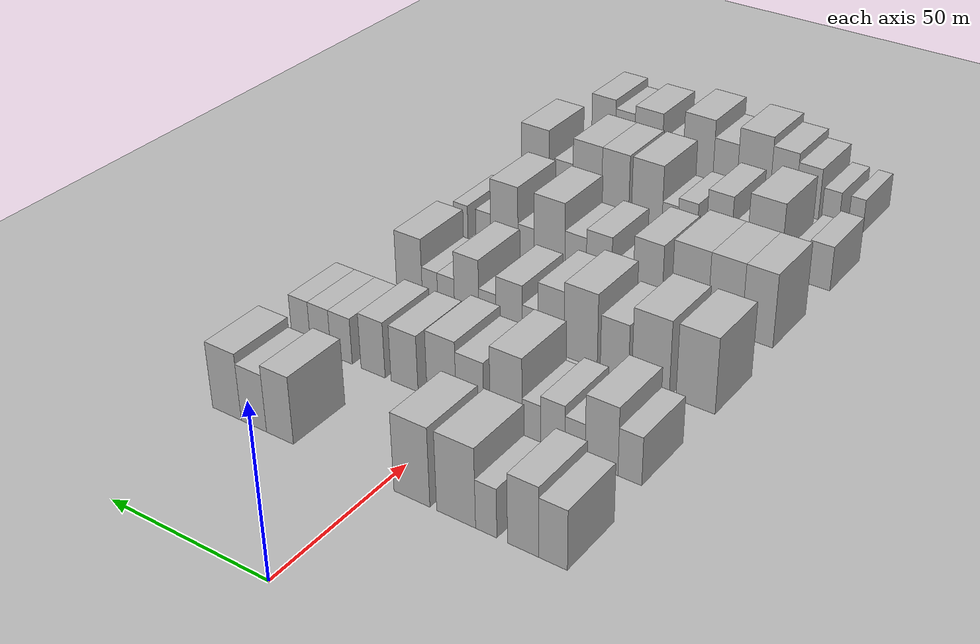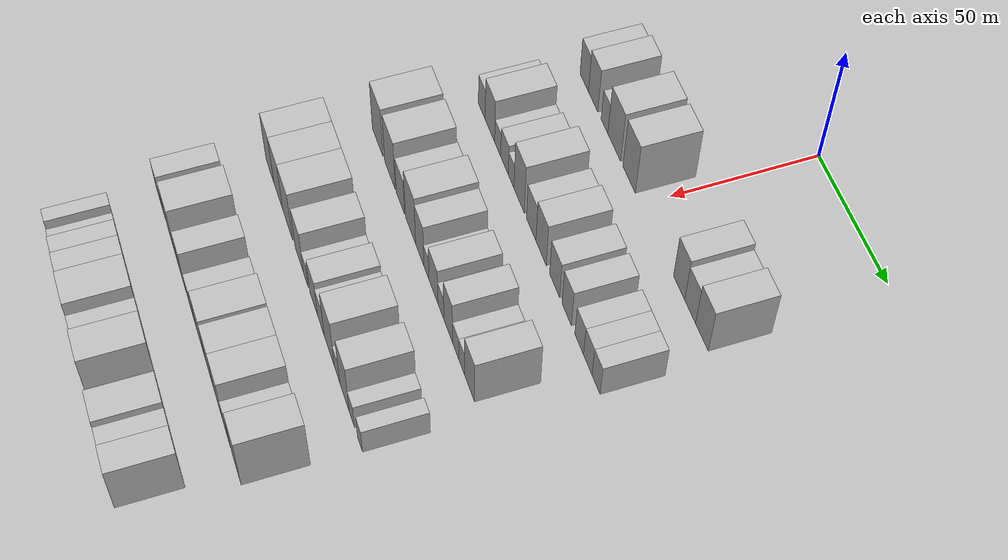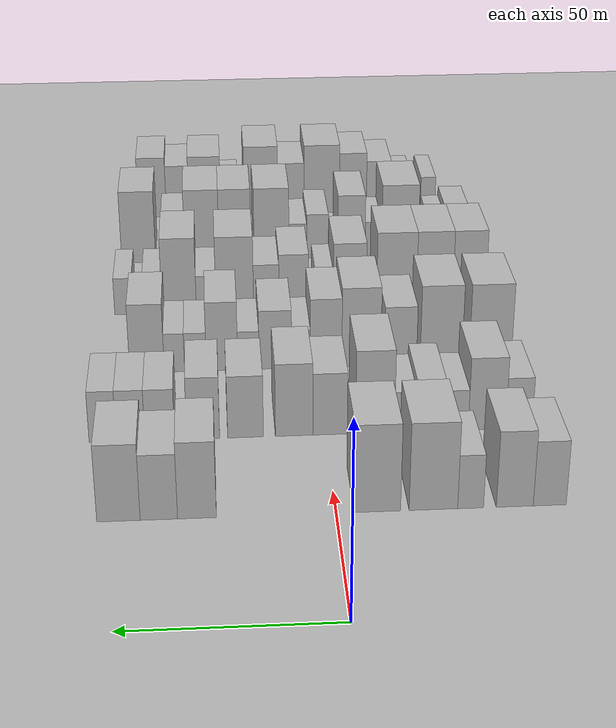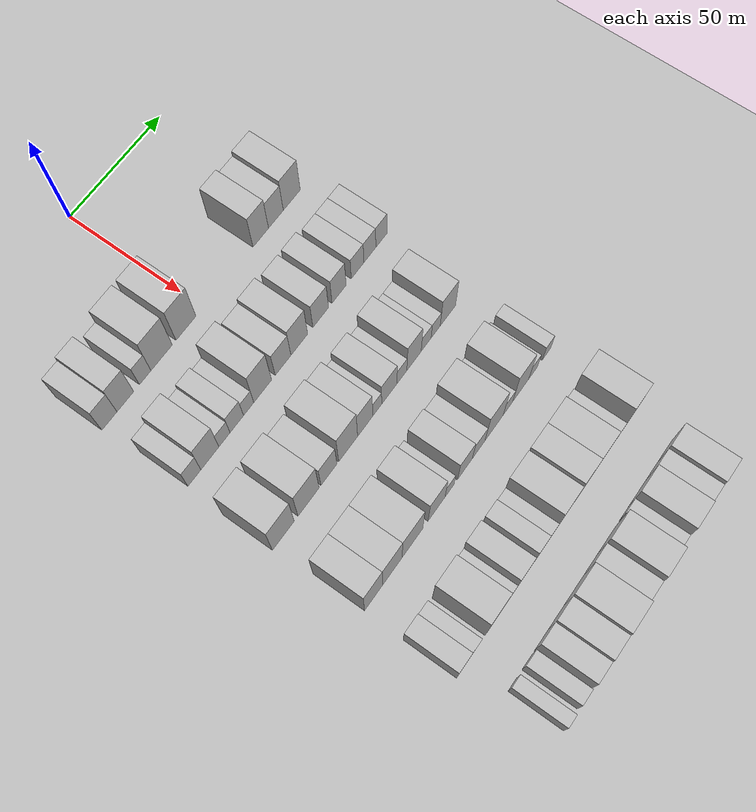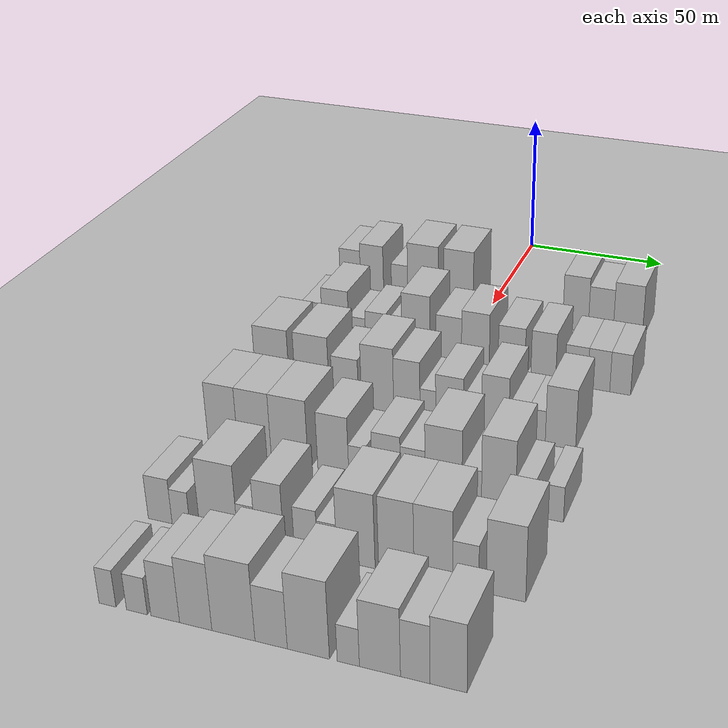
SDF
<sdf version="1.6">
 <world name="default">
  <include><name>ground_plane_1</name><uri>model://HANNAS_ground_plane</uri></include>
  <include>
   <name>ground_plane_2</name>
   <uri>model://HANNAS_ground_plane</uri>
   <pose>100 0 0  0 0 0</pose>
  </include>
  <model name="building_60">
   <static>1</static>
   <pose>50.0000 -50.0588 0 0.000000 0.000000 0.000000</pose>
   <link name="link">
    <pose>0 0 9.00 0 0 0</pose>
    <collision name="collision"><geometry><box><size>20.0000 7.7916 18.0000</size></box></geometry></collision>
    <visual name="visual">
     <cast_shadows>0</cast_shadows>
     <geometry><box><size>20.0000 7.7916 18.0000</size></box></geometry>
     <material>
      <script>
       <uri>model://HANNAS_wall/materials/scripts</uri>
       <uri>model://HANNAS_wall/materials/textures</uri>
       <name>vrc/HANNAS_wall</name>
      </script>
     </material>
    </visual>
   </link>
  </model>
  <model name="building_61">
   <static>1</static>
   <pose>50.0000 -41.8054 0 0.000000 0.000000 0.000000</pose>
   <link name="link">
    <pose>0 0 10.50 0 0 0</pose>
    <collision name="collision"><geometry><box><size>20.0000 8.7152 21.0000</size></box></geometry></collision>
    <visual name="visual">
     <cast_shadows>0</cast_shadows>
     <geometry><box><size>20.0000 8.7152 21.0000</size></box></geometry>
     <material>
      <script>
       <uri>model://HANNAS_wall/materials/scripts</uri>
       <uri>model://HANNAS_wall/materials/textures</uri>
       <name>vrc/HANNAS_wall</name>
      </script>
     </material>
    </visual>
   </link>
  </model>
  <model name="building_62">
   <static>1</static>
   <pose>50.0000 -31.4027 0 0.000000 0.000000 0.000000</pose>
   <link name="link">
    <pose>0 0 7.50 0 0 0</pose>
    <collision name="collision"><geometry><box><size>20.0000 6.0904 15.0000</size></box></geometry></collision>
    <visual name="visual">
     <cast_shadows>0</cast_shadows>
     <geometry><box><size>20.0000 6.0904 15.0000</size></box></geometry>
     <material>
      <script>
       <uri>model://HANNAS_wall/materials/scripts</uri>
       <uri>model://HANNAS_wall/materials/textures</uri>
       <name>vrc/HANNAS_wall</name>
      </script>
     </material>
    </visual>
   </link>
  </model>
  <model name="building_63">
   <static>1</static>
   <pose>50.0000 -22.6697 0 0.000000 0.000000 0.000000</pose>
   <link name="link">
    <pose>0 0 12.00 0 0 0</pose>
    <collision name="collision"><geometry><box><size>20.0000 11.3756 24.0000</size></box></geometry></collision>
    <visual name="visual">
     <cast_shadows>0</cast_shadows>
     <geometry><box><size>20.0000 11.3756 24.0000</size></box></geometry>
     <material>
      <script>
       <uri>model://HANNAS_wall/materials/scripts</uri>
       <uri>model://HANNAS_wall/materials/textures</uri>
       <name>vrc/HANNAS_wall</name>
      </script>
     </material>
    </visual>
   </link>
  </model>
  <model name="building_64">
   <static>1</static>
   <pose>50.0000 -9.5587 0 0.000000 0.000000 0.000000</pose>
   <link name="link">
    <pose>0 0 12.00 0 0 0</pose>
    <collision name="collision"><geometry><box><size>20.0000 10.8463 24.0000</size></box></geometry></collision>
    <visual name="visual">
     <cast_shadows>0</cast_shadows>
     <geometry><box><size>20.0000 10.8463 24.0000</size></box></geometry>
     <material>
      <script>
       <uri>model://HANNAS_wall/materials/scripts</uri>
       <uri>model://HANNAS_wall/materials/textures</uri>
       <name>vrc/HANNAS_wall</name>
      </script>
     </material>
    </visual>
   </link>
  </model>
  <model name="building_65">
   <static>1</static>
   <pose>50.0000 32.2987 0 0.000000 0.000000 0.000000</pose>
   <link name="link">
    <pose>0 0 10.50 0 0 0</pose>
    <collision name="collision"><geometry><box><size>20.0000 8.9562 21.0000</size></box></geometry></collision>
    <visual name="visual">
     <cast_shadows>0</cast_shadows>
     <geometry><box><size>20.0000 8.9562 21.0000</size></box></geometry>
     <material>
      <script>
       <uri>model://HANNAS_wall/materials/scripts</uri>
       <uri>model://HANNAS_wall/materials/textures</uri>
       <name>vrc/HANNAS_wall</name>
      </script>
     </material>
    </visual>
   </link>
  </model>
  <model name="building_66">
   <static>1</static>
   <pose>50.0000 41.0747 0 0.000000 0.000000 0.000000</pose>
   <link name="link">
    <pose>0 0 9.00 0 0 0</pose>
    <collision name="collision"><geometry><box><size>20.0000 8.5957 18.0000</size></box></geometry></collision>
    <visual name="visual">
     <cast_shadows>0</cast_shadows>
     <geometry><box><size>20.0000 8.5957 18.0000</size></box></geometry>
     <material>
      <script>
       <uri>model://HANNAS_wall/materials/scripts</uri>
       <uri>model://HANNAS_wall/materials/textures</uri>
       <name>vrc/HANNAS_wall</name>
      </script>
     </material>
    </visual>
   </link>
  </model>
  <model name="building_67">
   <static>1</static>
   <pose>50.0000 50.3520 0 0.000000 0.000000 0.000000</pose>
   <link name="link">
    <pose>0 0 10.50 0 0 0</pose>
    <collision name="collision"><geometry><box><size>20.0000 9.9589 21.0000</size></box></geometry></collision>
    <visual name="visual">
     <cast_shadows>0</cast_shadows>
     <geometry><box><size>20.0000 9.9589 21.0000</size></box></geometry>
     <material>
      <script>
       <uri>model://HANNAS_wall/materials/scripts</uri>
       <uri>model://HANNAS_wall/materials/textures</uri>
       <name>vrc/HANNAS_wall</name>
      </script>
     </material>
    </visual>
   </link>
  </model>
  <model name="building_184">
   <static>1</static>
   <pose>85.0000 -49.0860 0 0.000000 0.000000 0.000000</pose>
   <link name="link">
    <pose>0 0 7.50 0 0 0</pose>
    <collision name="collision"><geometry><box><size>20.0000 6.7820 15.0000</size></box></geometry></collision>
    <visual name="visual">
     <cast_shadows>0</cast_shadows>
     <geometry><box><size>20.0000 6.7820 15.0000</size></box></geometry>
     <material>
      <script>
       <uri>model://HANNAS_wall/materials/scripts</uri>
       <uri>model://HANNAS_wall/materials/textures</uri>
       <name>vrc/HANNAS_wall</name>
      </script>
     </material>
    </visual>
   </link>
  </model>
  <model name="building_185">
   <static>1</static>
   <pose>85.0000 -40.9374 0 0.000000 0.000000 0.000000</pose>
   <link name="link">
    <pose>0 0 10.50 0 0 0</pose>
    <collision name="collision"><geometry><box><size>20.0000 9.5151 21.0000</size></box></geometry></collision>
    <visual name="visual">
     <cast_shadows>0</cast_shadows>
     <geometry><box><size>20.0000 9.5151 21.0000</size></box></geometry>
     <material>
      <script>
       <uri>model://HANNAS_wall/materials/scripts</uri>
       <uri>model://HANNAS_wall/materials/textures</uri>
       <name>vrc/HANNAS_wall</name>
      </script>
     </material>
    </visual>
   </link>
  </model>
  <model name="building_186">
   <static>1</static>
   <pose>85.0000 -33.2122 0 0.000000 0.000000 0.000000</pose>
   <link name="link">
    <pose>0 0 6.00 0 0 0</pose>
    <collision name="collision"><geometry><box><size>20.0000 5.9353 12.0000</size></box></geometry></collision>
    <visual name="visual">
     <cast_shadows>0</cast_shadows>
     <geometry><box><size>20.0000 5.9353 12.0000</size></box></geometry>
     <material>
      <script>
       <uri>model://HANNAS_wall/materials/scripts</uri>
       <uri>model://HANNAS_wall/materials/textures</uri>
       <name>vrc/HANNAS_wall</name>
      </script>
     </material>
    </visual>
   </link>
  </model>
  <model name="building_187">
   <static>1</static>
   <pose>85.0000 -26.6049 0 0.000000 0.000000 0.000000</pose>
   <link name="link">
    <pose>0 0 7.50 0 0 0</pose>
    <collision name="collision"><geometry><box><size>20.0000 7.2794 15.0000</size></box></geometry></collision>
    <visual name="visual">
     <cast_shadows>0</cast_shadows>
     <geometry><box><size>20.0000 7.2794 15.0000</size></box></geometry>
     <material>
      <script>
       <uri>model://HANNAS_wall/materials/scripts</uri>
       <uri>model://HANNAS_wall/materials/textures</uri>
       <name>vrc/HANNAS_wall</name>
      </script>
     </material>
    </visual>
   </link>
  </model>
  <model name="building_188">
   <static>1</static>
   <pose>85.0000 -20.1975 0 0.000000 0.000000 0.000000</pose>
   <link name="link">
    <pose>0 0 6.00 0 0 0</pose>
    <collision name="collision"><geometry><box><size>20.0000 5.5354 12.0000</size></box></geometry></collision>
    <visual name="visual">
     <cast_shadows>0</cast_shadows>
     <geometry><box><size>20.0000 5.5354 12.0000</size></box></geometry>
     <material>
      <script>
       <uri>model://HANNAS_wall/materials/scripts</uri>
       <uri>model://HANNAS_wall/materials/textures</uri>
       <name>vrc/HANNAS_wall</name>
      </script>
     </material>
    </visual>
   </link>
  </model>
  <model name="building_189">
   <static>1</static>
   <pose>85.0000 -12.5226 0 0.000000 0.000000 0.000000</pose>
   <link name="link">
    <pose>0 0 12.00 0 0 0</pose>
    <collision name="collision"><geometry><box><size>20.0000 9.8143 24.0000</size></box></geometry></collision>
    <visual name="visual">
     <cast_shadows>0</cast_shadows>
     <geometry><box><size>20.0000 9.8143 24.0000</size></box></geometry>
     <material>
      <script>
       <uri>model://HANNAS_wall/materials/scripts</uri>
       <uri>model://HANNAS_wall/materials/textures</uri>
       <name>vrc/HANNAS_wall</name>
      </script>
     </material>
    </visual>
   </link>
  </model>
  <model name="building_190">
   <static>1</static>
   <pose>85.0000 -1.2175 0 0.000000 0.000000 0.000000</pose>
   <link name="link">
    <pose>0 0 9.00 0 0 0</pose>
    <collision name="collision"><geometry><box><size>20.0000 8.7960 18.0000</size></box></geometry></collision>
    <visual name="visual">
     <cast_shadows>0</cast_shadows>
     <geometry><box><size>20.0000 8.7960 18.0000</size></box></geometry>
     <material>
      <script>
       <uri>model://HANNAS_wall/materials/scripts</uri>
       <uri>model://HANNAS_wall/materials/textures</uri>
       <name>vrc/HANNAS_wall</name>
      </script>
     </material>
    </visual>
   </link>
  </model>
  <model name="building_191">
   <static>1</static>
   <pose>85.0000 7.8904 0 0.000000 0.000000 0.000000</pose>
   <link name="link">
    <pose>0 0 10.50 0 0 0</pose>
    <collision name="collision"><geometry><box><size>20.0000 9.4198 21.0000</size></box></geometry></collision>
    <visual name="visual">
     <cast_shadows>0</cast_shadows>
     <geometry><box><size>20.0000 9.4198 21.0000</size></box></geometry>
     <material>
      <script>
       <uri>model://HANNAS_wall/materials/scripts</uri>
       <uri>model://HANNAS_wall/materials/textures</uri>
       <name>vrc/HANNAS_wall</name>
      </script>
     </material>
    </visual>
   </link>
  </model>
  <model name="building_192">
   <static>1</static>
   <pose>85.0000 20.0888 0 0.000000 0.000000 0.000000</pose>
   <link name="link">
    <pose>0 0 9.00 0 0 0</pose>
    <collision name="collision"><geometry><box><size>20.0000 8.9771 18.0000</size></box></geometry></collision>
    <visual name="visual">
     <cast_shadows>0</cast_shadows>
     <geometry><box><size>20.0000 8.9771 18.0000</size></box></geometry>
     <material>
      <script>
       <uri>model://HANNAS_wall/materials/scripts</uri>
       <uri>model://HANNAS_wall/materials/textures</uri>
       <name>vrc/HANNAS_wall</name>
      </script>
     </material>
    </visual>
   </link>
  </model>
  <model name="building_193">
   <static>1</static>
   <pose>85.0000 30.6857 0 0.000000 0.000000 0.000000</pose>
   <link name="link">
    <pose>0 0 9.00 0 0 0</pose>
    <collision name="collision"><geometry><box><size>20.0000 8.2168 18.0000</size></box></geometry></collision>
    <visual name="visual">
     <cast_shadows>0</cast_shadows>
     <geometry><box><size>20.0000 8.2168 18.0000</size></box></geometry>
     <material>
      <script>
       <uri>model://HANNAS_wall/materials/scripts</uri>
       <uri>model://HANNAS_wall/materials/textures</uri>
       <name>vrc/HANNAS_wall</name>
      </script>
     </material>
    </visual>
   </link>
  </model>
  <model name="building_194">
   <static>1</static>
   <pose>85.0000 41.5175 0 0.000000 0.000000 0.000000</pose>
   <link name="link">
    <pose>0 0 7.50 0 0 0</pose>
    <collision name="collision"><geometry><box><size>20.0000 7.4469 15.0000</size></box></geometry></collision>
    <visual name="visual">
     <cast_shadows>0</cast_shadows>
     <geometry><box><size>20.0000 7.4469 15.0000</size></box></geometry>
     <material>
      <script>
       <uri>model://HANNAS_wall/materials/scripts</uri>
       <uri>model://HANNAS_wall/materials/textures</uri>
       <name>vrc/HANNAS_wall</name>
      </script>
     </material>
    </visual>
   </link>
  </model>
  <model name="building_195">
   <static>1</static>
   <pose>85.0000 48.8222 0 0.000000 0.000000 0.000000</pose>
   <link name="link">
    <pose>0 0 7.50 0 0 0</pose>
    <collision name="collision"><geometry><box><size>20.0000 7.1625 15.0000</size></box></geometry></collision>
    <visual name="visual">
     <cast_shadows>0</cast_shadows>
     <geometry><box><size>20.0000 7.1625 15.0000</size></box></geometry>
     <material>
      <script>
       <uri>model://HANNAS_wall/materials/scripts</uri>
       <uri>model://HANNAS_wall/materials/textures</uri>
       <name>vrc/HANNAS_wall</name>
      </script>
     </material>
    </visual>
   </link>
  </model>
  <model name="building_196">
   <static>1</static>
   <pose>85.0000 55.7459 0 0.000000 0.000000 0.000000</pose>
   <link name="link">
    <pose>0 0 7.50 0 0 0</pose>
    <collision name="collision"><geometry><box><size>20.0000 6.6847 15.0000</size></box></geometry></collision>
    <visual name="visual">
     <cast_shadows>0</cast_shadows>
     <geometry><box><size>20.0000 6.6847 15.0000</size></box></geometry>
     <material>
      <script>
       <uri>model://HANNAS_wall/materials/scripts</uri>
       <uri>model://HANNAS_wall/materials/textures</uri>
       <name>vrc/HANNAS_wall</name>
      </script>
     </material>
    </visual>
   </link>
  </model>
  <model name="building_310">
   <static>1</static>
   <pose>120.0000 -47.5419 0 0.000000 0.000000 0.000000</pose>
   <link name="link">
    <pose>0 0 12.00 0 0 0</pose>
    <collision name="collision"><geometry><box><size>20.0000 11.5861 24.0000</size></box></geometry></collision>
    <visual name="visual">
     <cast_shadows>0</cast_shadows>
     <geometry><box><size>20.0000 11.5861 24.0000</size></box></geometry>
     <material>
      <script>
       <uri>model://HANNAS_wall/materials/scripts</uri>
       <uri>model://HANNAS_wall/materials/textures</uri>
       <name>vrc/HANNAS_wall</name>
      </script>
     </material>
    </visual>
   </link>
  </model>
  <model name="building_311">
   <static>1</static>
   <pose>120.0000 -34.0307 0 0.000000 0.000000 0.000000</pose>
   <link name="link">
    <pose>0 0 12.00 0 0 0</pose>
    <collision name="collision"><geometry><box><size>20.0000 11.4361 24.0000</size></box></geometry></collision>
    <visual name="visual">
     <cast_shadows>0</cast_shadows>
     <geometry><box><size>20.0000 11.4361 24.0000</size></box></geometry>
     <material>
      <script>
       <uri>model://HANNAS_wall/materials/scripts</uri>
       <uri>model://HANNAS_wall/materials/textures</uri>
       <name>vrc/HANNAS_wall</name>
      </script>
     </material>
    </visual>
   </link>
  </model>
  <model name="building_312">
   <static>1</static>
   <pose>120.0000 -22.9382 0 0.000000 0.000000 0.000000</pose>
   <link name="link">
    <pose>0 0 9.00 0 0 0</pose>
    <collision name="collision"><geometry><box><size>20.0000 8.7489 18.0000</size></box></geometry></collision>
    <visual name="visual">
     <cast_shadows>0</cast_shadows>
     <geometry><box><size>20.0000 8.7489 18.0000</size></box></geometry>
     <material>
      <script>
       <uri>model://HANNAS_wall/materials/scripts</uri>
       <uri>model://HANNAS_wall/materials/textures</uri>
       <name>vrc/HANNAS_wall</name>
      </script>
     </material>
    </visual>
   </link>
  </model>
  <model name="building_313">
   <static>1</static>
   <pose>120.0000 -12.2815 0 0.000000 0.000000 0.000000</pose>
   <link name="link">
    <pose>0 0 12.00 0 0 0</pose>
    <collision name="collision"><geometry><box><size>20.0000 10.5646 24.0000</size></box></geometry></collision>
    <visual name="visual">
     <cast_shadows>0</cast_shadows>
     <geometry><box><size>20.0000 10.5646 24.0000</size></box></geometry>
     <material>
      <script>
       <uri>model://HANNAS_wall/materials/scripts</uri>
       <uri>model://HANNAS_wall/materials/textures</uri>
       <name>vrc/HANNAS_wall</name>
      </script>
     </material>
    </visual>
   </link>
  </model>
  <model name="building_314">
   <static>1</static>
   <pose>120.0000 -2.7231 0 0.000000 0.000000 0.000000</pose>
   <link name="link">
    <pose>0 0 10.50 0 0 0</pose>
    <collision name="collision"><geometry><box><size>20.0000 8.5522 21.0000</size></box></geometry></collision>
    <visual name="visual">
     <cast_shadows>0</cast_shadows>
     <geometry><box><size>20.0000 8.5522 21.0000</size></box></geometry>
     <material>
      <script>
       <uri>model://HANNAS_wall/materials/scripts</uri>
       <uri>model://HANNAS_wall/materials/textures</uri>
       <name>vrc/HANNAS_wall</name>
      </script>
     </material>
    </visual>
   </link>
  </model>
  <model name="building_315">
   <static>1</static>
   <pose>120.0000 4.0740 0 0.000000 0.000000 0.000000</pose>
   <link name="link">
    <pose>0 0 6.00 0 0 0</pose>
    <collision name="collision"><geometry><box><size>20.0000 5.0420 12.0000</size></box></geometry></collision>
    <visual name="visual">
     <cast_shadows>0</cast_shadows>
     <geometry><box><size>20.0000 5.0420 12.0000</size></box></geometry>
     <material>
      <script>
       <uri>model://HANNAS_wall/materials/scripts</uri>
       <uri>model://HANNAS_wall/materials/textures</uri>
       <name>vrc/HANNAS_wall</name>
      </script>
     </material>
    </visual>
   </link>
  </model>
  <model name="building_316">
   <static>1</static>
   <pose>120.0000 11.0069 0 0.000000 0.000000 0.000000</pose>
   <link name="link">
    <pose>0 0 9.00 0 0 0</pose>
    <collision name="collision"><geometry><box><size>20.0000 8.8238 18.0000</size></box></geometry></collision>
    <visual name="visual">
     <cast_shadows>0</cast_shadows>
     <geometry><box><size>20.0000 8.8238 18.0000</size></box></geometry>
     <material>
      <script>
       <uri>model://HANNAS_wall/materials/scripts</uri>
       <uri>model://HANNAS_wall/materials/textures</uri>
       <name>vrc/HANNAS_wall</name>
      </script>
     </material>
    </visual>
   </link>
  </model>
  <model name="building_317">
   <static>1</static>
   <pose>120.0000 18.2955 0 0.000000 0.000000 0.000000</pose>
   <link name="link">
    <pose>0 0 6.00 0 0 0</pose>
    <collision name="collision"><geometry><box><size>20.0000 5.7532 12.0000</size></box></geometry></collision>
    <visual name="visual">
     <cast_shadows>0</cast_shadows>
     <geometry><box><size>20.0000 5.7532 12.0000</size></box></geometry>
     <material>
      <script>
       <uri>model://HANNAS_wall/materials/scripts</uri>
       <uri>model://HANNAS_wall/materials/textures</uri>
       <name>vrc/HANNAS_wall</name>
      </script>
     </material>
    </visual>
   </link>
  </model>
  <model name="building_318">
   <static>1</static>
   <pose>120.0000 25.4135 0 0.000000 0.000000 0.000000</pose>
   <link name="link">
    <pose>0 0 10.50 0 0 0</pose>
    <collision name="collision"><geometry><box><size>20.0000 8.4828 21.0000</size></box></geometry></collision>
    <visual name="visual">
     <cast_shadows>0</cast_shadows>
     <geometry><box><size>20.0000 8.4828 21.0000</size></box></geometry>
     <material>
      <script>
       <uri>model://HANNAS_wall/materials/scripts</uri>
       <uri>model://HANNAS_wall/materials/textures</uri>
       <name>vrc/HANNAS_wall</name>
      </script>
     </material>
    </visual>
   </link>
  </model>
  <model name="building_319">
   <static>1</static>
   <pose>120.0000 32.5932 0 0.000000 0.000000 0.000000</pose>
   <link name="link">
    <pose>0 0 6.00 0 0 0</pose>
    <collision name="collision"><geometry><box><size>20.0000 5.8766 12.0000</size></box></geometry></collision>
    <visual name="visual">
     <cast_shadows>0</cast_shadows>
     <geometry><box><size>20.0000 5.8766 12.0000</size></box></geometry>
     <material>
      <script>
       <uri>model://HANNAS_wall/materials/scripts</uri>
       <uri>model://HANNAS_wall/materials/textures</uri>
       <name>vrc/HANNAS_wall</name>
      </script>
     </material>
    </visual>
   </link>
  </model>
  <model name="building_320">
   <static>1</static>
   <pose>120.0000 38.2560 0 0.000000 0.000000 0.000000</pose>
   <link name="link">
    <pose>0 0 6.00 0 0 0</pose>
    <collision name="collision"><geometry><box><size>20.0000 5.4492 12.0000</size></box></geometry></collision>
    <visual name="visual">
     <cast_shadows>0</cast_shadows>
     <geometry><box><size>20.0000 5.4492 12.0000</size></box></geometry>
     <material>
      <script>
       <uri>model://HANNAS_wall/materials/scripts</uri>
       <uri>model://HANNAS_wall/materials/textures</uri>
       <name>vrc/HANNAS_wall</name>
      </script>
     </material>
    </visual>
   </link>
  </model>
  <model name="building_321">
   <static>1</static>
   <pose>120.0000 45.6116 0 0.000000 0.000000 0.000000</pose>
   <link name="link">
    <pose>0 0 10.50 0 0 0</pose>
    <collision name="collision"><geometry><box><size>20.0000 9.2619 21.0000</size></box></geometry></collision>
    <visual name="visual">
     <cast_shadows>0</cast_shadows>
     <geometry><box><size>20.0000 9.2619 21.0000</size></box></geometry>
     <material>
      <script>
       <uri>model://HANNAS_wall/materials/scripts</uri>
       <uri>model://HANNAS_wall/materials/textures</uri>
       <name>vrc/HANNAS_wall</name>
      </script>
     </material>
    </visual>
   </link>
  </model>
  <model name="building_433">
   <static>1</static>
   <pose>155.0000 -47.0612 0 0.000000 0.000000 0.000000</pose>
   <link name="link">
    <pose>0 0 12.00 0 0 0</pose>
    <collision name="collision"><geometry><box><size>20.0000 9.6658 24.0000</size></box></geometry></collision>
    <visual name="visual">
     <cast_shadows>0</cast_shadows>
     <geometry><box><size>20.0000 9.6658 24.0000</size></box></geometry>
     <material>
      <script>
       <uri>model://HANNAS_wall/materials/scripts</uri>
       <uri>model://HANNAS_wall/materials/textures</uri>
       <name>vrc/HANNAS_wall</name>
      </script>
     </material>
    </visual>
   </link>
  </model>
  <model name="building_434">
   <static>1</static>
   <pose>155.0000 -36.9147 0 0.000000 0.000000 0.000000</pose>
   <link name="link">
    <pose>0 0 12.00 0 0 0</pose>
    <collision name="collision"><geometry><box><size>20.0000 10.6271 24.0000</size></box></geometry></collision>
    <visual name="visual">
     <cast_shadows>0</cast_shadows>
     <geometry><box><size>20.0000 10.6271 24.0000</size></box></geometry>
     <material>
      <script>
       <uri>model://HANNAS_wall/materials/scripts</uri>
       <uri>model://HANNAS_wall/materials/textures</uri>
       <name>vrc/HANNAS_wall</name>
      </script>
     </material>
    </visual>
   </link>
  </model>
  <model name="building_435">
   <static>1</static>
   <pose>155.0000 -25.7898 0 0.000000 0.000000 0.000000</pose>
   <link name="link">
    <pose>0 0 12.00 0 0 0</pose>
    <collision name="collision"><geometry><box><size>20.0000 11.6227 24.0000</size></box></geometry></collision>
    <visual name="visual">
     <cast_shadows>0</cast_shadows>
     <geometry><box><size>20.0000 11.6227 24.0000</size></box></geometry>
     <material>
      <script>
       <uri>model://HANNAS_wall/materials/scripts</uri>
       <uri>model://HANNAS_wall/materials/textures</uri>
       <name>vrc/HANNAS_wall</name>
      </script>
     </material>
    </visual>
   </link>
  </model>
  <model name="building_436">
   <static>1</static>
   <pose>155.0000 -12.1797 0 0.000000 0.000000 0.000000</pose>
   <link name="link">
    <pose>0 0 10.50 0 0 0</pose>
    <collision name="collision"><geometry><box><size>20.0000 9.5976 21.0000</size></box></geometry></collision>
    <visual name="visual">
     <cast_shadows>0</cast_shadows>
     <geometry><box><size>20.0000 9.5976 21.0000</size></box></geometry>
     <material>
      <script>
       <uri>model://HANNAS_wall/materials/scripts</uri>
       <uri>model://HANNAS_wall/materials/textures</uri>
       <name>vrc/HANNAS_wall</name>
      </script>
     </material>
    </visual>
   </link>
  </model>
  <model name="building_437">
   <static>1</static>
   <pose>155.0000 -4.7977 0 0.000000 0.000000 0.000000</pose>
   <link name="link">
    <pose>0 0 6.00 0 0 0</pose>
    <collision name="collision"><geometry><box><size>20.0000 5.1664 12.0000</size></box></geometry></collision>
    <visual name="visual">
     <cast_shadows>0</cast_shadows>
     <geometry><box><size>20.0000 5.1664 12.0000</size></box></geometry>
     <material>
      <script>
       <uri>model://HANNAS_wall/materials/scripts</uri>
       <uri>model://HANNAS_wall/materials/textures</uri>
       <name>vrc/HANNAS_wall</name>
      </script>
     </material>
    </visual>
   </link>
  </model>
  <model name="building_438">
   <static>1</static>
   <pose>155.0000 4.0860 0 0.000000 0.000000 0.000000</pose>
   <link name="link">
    <pose>0 0 9.00 0 0 0</pose>
    <collision name="collision"><geometry><box><size>20.0000 8.6009 18.0000</size></box></geometry></collision>
    <visual name="visual">
     <cast_shadows>0</cast_shadows>
     <geometry><box><size>20.0000 8.6009 18.0000</size></box></geometry>
     <material>
      <script>
       <uri>model://HANNAS_wall/materials/scripts</uri>
       <uri>model://HANNAS_wall/materials/textures</uri>
       <name>vrc/HANNAS_wall</name>
      </script>
     </material>
    </visual>
   </link>
  </model>
  <model name="building_439">
   <static>1</static>
   <pose>155.0000 12.0719 0 0.000000 0.000000 0.000000</pose>
   <link name="link">
    <pose>0 0 7.50 0 0 0</pose>
    <collision name="collision"><geometry><box><size>20.0000 7.3711 15.0000</size></box></geometry></collision>
    <visual name="visual">
     <cast_shadows>0</cast_shadows>
     <geometry><box><size>20.0000 7.3711 15.0000</size></box></geometry>
     <material>
      <script>
       <uri>model://HANNAS_wall/materials/scripts</uri>
       <uri>model://HANNAS_wall/materials/textures</uri>
       <name>vrc/HANNAS_wall</name>
      </script>
     </material>
    </visual>
   </link>
  </model>
  <model name="building_440">
   <static>1</static>
   <pose>155.0000 21.1952 0 0.000000 0.000000 0.000000</pose>
   <link name="link">
    <pose>0 0 12.00 0 0 0</pose>
    <collision name="collision"><geometry><box><size>20.0000 10.8754 24.0000</size></box></geometry></collision>
    <visual name="visual">
     <cast_shadows>0</cast_shadows>
     <geometry><box><size>20.0000 10.8754 24.0000</size></box></geometry>
     <material>
      <script>
       <uri>model://HANNAS_wall/materials/scripts</uri>
       <uri>model://HANNAS_wall/materials/textures</uri>
       <name>vrc/HANNAS_wall</name>
      </script>
     </material>
    </visual>
   </link>
  </model>
  <model name="building_441">
   <static>1</static>
   <pose>155.0000 29.4606 0 0.000000 0.000000 0.000000</pose>
   <link name="link">
    <pose>0 0 6.00 0 0 0</pose>
    <collision name="collision"><geometry><box><size>20.0000 5.6555 12.0000</size></box></geometry></collision>
    <visual name="visual">
     <cast_shadows>0</cast_shadows>
     <geometry><box><size>20.0000 5.6555 12.0000</size></box></geometry>
     <material>
      <script>
       <uri>model://HANNAS_wall/materials/scripts</uri>
       <uri>model://HANNAS_wall/materials/textures</uri>
       <name>vrc/HANNAS_wall</name>
      </script>
     </material>
    </visual>
   </link>
  </model>
  <model name="building_442">
   <static>1</static>
   <pose>155.0000 37.2238 0 0.000000 0.000000 0.000000</pose>
   <link name="link">
    <pose>0 0 12.00 0 0 0</pose>
    <collision name="collision"><geometry><box><size>20.0000 9.8709 24.0000</size></box></geometry></collision>
    <visual name="visual">
     <cast_shadows>0</cast_shadows>
     <geometry><box><size>20.0000 9.8709 24.0000</size></box></geometry>
     <material>
      <script>
       <uri>model://HANNAS_wall/materials/scripts</uri>
       <uri>model://HANNAS_wall/materials/textures</uri>
       <name>vrc/HANNAS_wall</name>
      </script>
     </material>
    </visual>
   </link>
  </model>
  <model name="building_443">
   <static>1</static>
   <pose>155.0000 44.8950 0 0.000000 0.000000 0.000000</pose>
   <link name="link">
    <pose>0 0 6.00 0 0 0</pose>
    <collision name="collision"><geometry><box><size>20.0000 5.4714 12.0000</size></box></geometry></collision>
    <visual name="visual">
     <cast_shadows>0</cast_shadows>
     <geometry><box><size>20.0000 5.4714 12.0000</size></box></geometry>
     <material>
      <script>
       <uri>model://HANNAS_wall/materials/scripts</uri>
       <uri>model://HANNAS_wall/materials/textures</uri>
       <name>vrc/HANNAS_wall</name>
      </script>
     </material>
    </visual>
   </link>
  </model>
  <model name="building_444">
   <static>1</static>
   <pose>155.0000 53.2041 0 0.000000 0.000000 0.000000</pose>
   <link name="link">
    <pose>0 0 6.00 0 0 0</pose>
    <collision name="collision"><geometry><box><size>20.0000 5.1469 12.0000</size></box></geometry></collision>
    <visual name="visual">
     <cast_shadows>0</cast_shadows>
     <geometry><box><size>20.0000 5.1469 12.0000</size></box></geometry>
     <material>
      <script>
       <uri>model://HANNAS_wall/materials/scripts</uri>
       <uri>model://HANNAS_wall/materials/textures</uri>
       <name>vrc/HANNAS_wall</name>
      </script>
     </material>
    </visual>
   </link>
  </model>
  <model name="building_563">
   <static>1</static>
   <pose>190.0000 -48.5921 0 0.000000 0.000000 0.000000</pose>
   <link name="link">
    <pose>0 0 7.50 0 0 0</pose>
    <collision name="collision"><geometry><box><size>20.0000 7.3276 15.0000</size></box></geometry></collision>
    <visual name="visual">
     <cast_shadows>0</cast_shadows>
     <geometry><box><size>20.0000 7.3276 15.0000</size></box></geometry>
     <material>
      <script>
       <uri>model://HANNAS_wall/materials/scripts</uri>
       <uri>model://HANNAS_wall/materials/textures</uri>
       <name>vrc/HANNAS_wall</name>
      </script>
     </material>
    </visual>
   </link>
  </model>
  <model name="building_564">
   <static>1</static>
   <pose>190.0000 -42.1969 0 0.000000 0.000000 0.000000</pose>
   <link name="link">
    <pose>0 0 6.00 0 0 0</pose>
    <collision name="collision"><geometry><box><size>20.0000 5.4628 12.0000</size></box></geometry></collision>
    <visual name="visual">
     <cast_shadows>0</cast_shadows>
     <geometry><box><size>20.0000 5.4628 12.0000</size></box></geometry>
     <material>
      <script>
       <uri>model://HANNAS_wall/materials/scripts</uri>
       <uri>model://HANNAS_wall/materials/textures</uri>
       <name>vrc/HANNAS_wall</name>
      </script>
     </material>
    </visual>
   </link>
  </model>
  <model name="building_565">
   <static>1</static>
   <pose>190.0000 -30.7846 0 0.000000 0.000000 0.000000</pose>
   <link name="link">
    <pose>0 0 12.00 0 0 0</pose>
    <collision name="collision"><geometry><box><size>20.0000 11.3618 24.0000</size></box></geometry></collision>
    <visual name="visual">
     <cast_shadows>0</cast_shadows>
     <geometry><box><size>20.0000 11.3618 24.0000</size></box></geometry>
     <material>
      <script>
       <uri>model://HANNAS_wall/materials/scripts</uri>
       <uri>model://HANNAS_wall/materials/textures</uri>
       <name>vrc/HANNAS_wall</name>
      </script>
     </material>
    </visual>
   </link>
  </model>
  <model name="building_566">
   <static>1</static>
   <pose>190.0000 -22.4969 0 0.000000 0.000000 0.000000</pose>
   <link name="link">
    <pose>0 0 6.00 0 0 0</pose>
    <collision name="collision"><geometry><box><size>20.0000 5.2135 12.0000</size></box></geometry></collision>
    <visual name="visual">
     <cast_shadows>0</cast_shadows>
     <geometry><box><size>20.0000 5.2135 12.0000</size></box></geometry>
     <material>
      <script>
       <uri>model://HANNAS_wall/materials/scripts</uri>
       <uri>model://HANNAS_wall/materials/textures</uri>
       <name>vrc/HANNAS_wall</name>
      </script>
     </material>
    </visual>
   </link>
  </model>
  <model name="building_567">
   <static>1</static>
   <pose>190.0000 -15.6893 0 0.000000 0.000000 0.000000</pose>
   <link name="link">
    <pose>0 0 10.50 0 0 0</pose>
    <collision name="collision"><geometry><box><size>20.0000 8.4018 21.0000</size></box></geometry></collision>
    <visual name="visual">
     <cast_shadows>0</cast_shadows>
     <geometry><box><size>20.0000 8.4018 21.0000</size></box></geometry>
     <material>
      <script>
       <uri>model://HANNAS_wall/materials/scripts</uri>
       <uri>model://HANNAS_wall/materials/textures</uri>
       <name>vrc/HANNAS_wall</name>
      </script>
     </material>
    </visual>
   </link>
  </model>
  <model name="building_568">
   <static>1</static>
   <pose>190.0000 -5.1484 0 0.000000 0.000000 0.000000</pose>
   <link name="link">
    <pose>0 0 7.50 0 0 0</pose>
    <collision name="collision"><geometry><box><size>20.0000 6.6799 15.0000</size></box></geometry></collision>
    <visual name="visual">
     <cast_shadows>0</cast_shadows>
     <geometry><box><size>20.0000 6.6799 15.0000</size></box></geometry>
     <material>
      <script>
       <uri>model://HANNAS_wall/materials/scripts</uri>
       <uri>model://HANNAS_wall/materials/textures</uri>
       <name>vrc/HANNAS_wall</name>
      </script>
     </material>
    </visual>
   </link>
  </model>
  <model name="building_569">
   <static>1</static>
   <pose>190.0000 0.9268 0 0.000000 0.000000 0.000000</pose>
   <link name="link">
    <pose>0 0 6.00 0 0 0</pose>
    <collision name="collision"><geometry><box><size>20.0000 5.4705 12.0000</size></box></geometry></collision>
    <visual name="visual">
     <cast_shadows>0</cast_shadows>
     <geometry><box><size>20.0000 5.4705 12.0000</size></box></geometry>
     <material>
      <script>
       <uri>model://HANNAS_wall/materials/scripts</uri>
       <uri>model://HANNAS_wall/materials/textures</uri>
       <name>vrc/HANNAS_wall</name>
      </script>
     </material>
    </visual>
   </link>
  </model>
  <model name="building_570">
   <static>1</static>
   <pose>190.0000 9.0519 0 0.000000 0.000000 0.000000</pose>
   <link name="link">
    <pose>0 0 12.00 0 0 0</pose>
    <collision name="collision"><geometry><box><size>20.0000 10.7795 24.0000</size></box></geometry></collision>
    <visual name="visual">
     <cast_shadows>0</cast_shadows>
     <geometry><box><size>20.0000 10.7795 24.0000</size></box></geometry>
     <material>
      <script>
       <uri>model://HANNAS_wall/materials/scripts</uri>
       <uri>model://HANNAS_wall/materials/textures</uri>
       <name>vrc/HANNAS_wall</name>
      </script>
     </material>
    </visual>
   </link>
  </model>
  <model name="building_571">
   <static>1</static>
   <pose>190.0000 20.3364 0 0.000000 0.000000 0.000000</pose>
   <link name="link">
    <pose>0 0 12.00 0 0 0</pose>
    <collision name="collision"><geometry><box><size>20.0000 9.7895 24.0000</size></box></geometry></collision>
    <visual name="visual">
     <cast_shadows>0</cast_shadows>
     <geometry><box><size>20.0000 9.7895 24.0000</size></box></geometry>
     <material>
      <script>
       <uri>model://HANNAS_wall/materials/scripts</uri>
       <uri>model://HANNAS_wall/materials/textures</uri>
       <name>vrc/HANNAS_wall</name>
      </script>
     </material>
    </visual>
   </link>
  </model>
  <model name="building_572">
   <static>1</static>
   <pose>190.0000 30.5062 0 0.000000 0.000000 0.000000</pose>
   <link name="link">
    <pose>0 0 12.00 0 0 0</pose>
    <collision name="collision"><geometry><box><size>20.0000 10.5500 24.0000</size></box></geometry></collision>
    <visual name="visual">
     <cast_shadows>0</cast_shadows>
     <geometry><box><size>20.0000 10.5500 24.0000</size></box></geometry>
     <material>
      <script>
       <uri>model://HANNAS_wall/materials/scripts</uri>
       <uri>model://HANNAS_wall/materials/textures</uri>
       <name>vrc/HANNAS_wall</name>
      </script>
     </material>
    </visual>
   </link>
  </model>
  <model name="building_573">
   <static>1</static>
   <pose>190.0000 39.2640 0 0.000000 0.000000 0.000000</pose>
   <link name="link">
    <pose>0 0 7.50 0 0 0</pose>
    <collision name="collision"><geometry><box><size>20.0000 6.9656 15.0000</size></box></geometry></collision>
    <visual name="visual">
     <cast_shadows>0</cast_shadows>
     <geometry><box><size>20.0000 6.9656 15.0000</size></box></geometry>
     <material>
      <script>
       <uri>model://HANNAS_wall/materials/scripts</uri>
       <uri>model://HANNAS_wall/materials/textures</uri>
       <name>vrc/HANNAS_wall</name>
      </script>
     </material>
    </visual>
   </link>
  </model>
  <model name="building_574">
   <static>1</static>
   <pose>190.0000 49.9517 0 0.000000 0.000000 0.000000</pose>
   <link name="link">
    <pose>0 0 12.00 0 0 0</pose>
    <collision name="collision"><geometry><box><size>20.0000 10.4099 24.0000</size></box></geometry></collision>
    <visual name="visual">
     <cast_shadows>0</cast_shadows>
     <geometry><box><size>20.0000 10.4099 24.0000</size></box></geometry>
     <material>
      <script>
       <uri>model://HANNAS_wall/materials/scripts</uri>
       <uri>model://HANNAS_wall/materials/textures</uri>
       <name>vrc/HANNAS_wall</name>
      </script>
     </material>
    </visual>
   </link>
  </model>
  <model name="building_684">
   <static>1</static>
   <pose>225.0000 -43.9754 0 0.000000 0.000000 0.000000</pose>
   <link name="link">
    <pose>0 0 6.00 0 0 0</pose>
    <collision name="collision"><geometry><box><size>20.0000 4.8238 12.0000</size></box></geometry></collision>
    <visual name="visual">
     <cast_shadows>0</cast_shadows>
     <geometry><box><size>20.0000 4.8238 12.0000</size></box></geometry>
     <material>
      <script>
       <uri>model://HANNAS_wall/materials/scripts</uri>
       <uri>model://HANNAS_wall/materials/textures</uri>
       <name>vrc/HANNAS_wall</name>
      </script>
     </material>
    </visual>
   </link>
  </model>
  <model name="building_685">
   <static>1</static>
   <pose>225.0000 -35.6143 0 0.000000 0.000000 0.000000</pose>
   <link name="link">
    <pose>0 0 6.00 0 0 0</pose>
    <collision name="collision"><geometry><box><size>20.0000 5.8984 12.0000</size></box></geometry></collision>
    <visual name="visual">
     <cast_shadows>0</cast_shadows>
     <geometry><box><size>20.0000 5.8984 12.0000</size></box></geometry>
     <material>
      <script>
       <uri>model://HANNAS_wall/materials/scripts</uri>
       <uri>model://HANNAS_wall/materials/textures</uri>
       <name>vrc/HANNAS_wall</name>
      </script>
     </material>
    </visual>
   </link>
  </model>
  <model name="building_686">
   <static>1</static>
   <pose>225.0000 -27.6614 0 0.000000 0.000000 0.000000</pose>
   <link name="link">
    <pose>0 0 9.00 0 0 0</pose>
    <collision name="collision"><geometry><box><size>20.0000 8.0076 18.0000</size></box></geometry></collision>
    <visual name="visual">
     <cast_shadows>0</cast_shadows>
     <geometry><box><size>20.0000 8.0076 18.0000</size></box></geometry>
     <material>
      <script>
       <uri>model://HANNAS_wall/materials/scripts</uri>
       <uri>model://HANNAS_wall/materials/textures</uri>
       <name>vrc/HANNAS_wall</name>
      </script>
     </material>
    </visual>
   </link>
  </model>
  <model name="building_687">
   <static>1</static>
   <pose>225.0000 -19.2129 0 0.000000 0.000000 0.000000</pose>
   <link name="link">
    <pose>0 0 10.50 0 0 0</pose>
    <collision name="collision"><geometry><box><size>20.0000 8.8894 21.0000</size></box></geometry></collision>
    <visual name="visual">
     <cast_shadows>0</cast_shadows>
     <geometry><box><size>20.0000 8.8894 21.0000</size></box></geometry>
     <material>
      <script>
       <uri>model://HANNAS_wall/materials/scripts</uri>
       <uri>model://HANNAS_wall/materials/textures</uri>
       <name>vrc/HANNAS_wall</name>
      </script>
     </material>
    </visual>
   </link>
  </model>
  <model name="building_688">
   <static>1</static>
   <pose>225.0000 -8.9426 0 0.000000 0.000000 0.000000</pose>
   <link name="link">
    <pose>0 0 12.00 0 0 0</pose>
    <collision name="collision"><geometry><box><size>20.0000 11.6510 24.0000</size></box></geometry></collision>
    <visual name="visual">
     <cast_shadows>0</cast_shadows>
     <geometry><box><size>20.0000 11.6510 24.0000</size></box></geometry>
     <material>
      <script>
       <uri>model://HANNAS_wall/materials/scripts</uri>
       <uri>model://HANNAS_wall/materials/textures</uri>
       <name>vrc/HANNAS_wall</name>
      </script>
     </material>
    </visual>
   </link>
  </model>
  <model name="building_689">
   <static>1</static>
   <pose>225.0000 1.1897 0 0.000000 0.000000 0.000000</pose>
   <link name="link">
    <pose>0 0 9.00 0 0 0</pose>
    <collision name="collision"><geometry><box><size>20.0000 8.6136 18.0000</size></box></geometry></collision>
    <visual name="visual">
     <cast_shadows>0</cast_shadows>
     <geometry><box><size>20.0000 8.6136 18.0000</size></box></geometry>
     <material>
      <script>
       <uri>model://HANNAS_wall/materials/scripts</uri>
       <uri>model://HANNAS_wall/materials/textures</uri>
       <name>vrc/HANNAS_wall</name>
      </script>
     </material>
    </visual>
   </link>
  </model>
  <model name="building_690">
   <static>1</static>
   <pose>225.0000 11.0076 0 0.000000 0.000000 0.000000</pose>
   <link name="link">
    <pose>0 0 12.00 0 0 0</pose>
    <collision name="collision"><geometry><box><size>20.0000 11.0222 24.0000</size></box></geometry></collision>
    <visual name="visual">
     <cast_shadows>0</cast_shadows>
     <geometry><box><size>20.0000 11.0222 24.0000</size></box></geometry>
     <material>
      <script>
       <uri>model://HANNAS_wall/materials/scripts</uri>
       <uri>model://HANNAS_wall/materials/textures</uri>
       <name>vrc/HANNAS_wall</name>
      </script>
     </material>
    </visual>
   </link>
  </model>
  <model name="building_691">
   <static>1</static>
   <pose>225.0000 21.3729 0 0.000000 0.000000 0.000000</pose>
   <link name="link">
    <pose>0 0 6.00 0 0 0</pose>
    <collision name="collision"><geometry><box><size>20.0000 5.7083 12.0000</size></box></geometry></collision>
    <visual name="visual">
     <cast_shadows>0</cast_shadows>
     <geometry><box><size>20.0000 5.7083 12.0000</size></box></geometry>
     <material>
      <script>
       <uri>model://HANNAS_wall/materials/scripts</uri>
       <uri>model://HANNAS_wall/materials/textures</uri>
       <name>vrc/HANNAS_wall</name>
      </script>
     </material>
    </visual>
   </link>
  </model>
  <model name="building_692">
   <static>1</static>
   <pose>225.0000 29.4321 0 0.000000 0.000000 0.000000</pose>
   <link name="link">
    <pose>0 0 10.50 0 0 0</pose>
    <collision name="collision"><geometry><box><size>20.0000 10.4101 21.0000</size></box></geometry></collision>
    <visual name="visual">
     <cast_shadows>0</cast_shadows>
     <geometry><box><size>20.0000 10.4101 21.0000</size></box></geometry>
     <material>
      <script>
       <uri>model://HANNAS_wall/materials/scripts</uri>
       <uri>model://HANNAS_wall/materials/textures</uri>
       <name>vrc/HANNAS_wall</name>
      </script>
     </material>
    </visual>
   </link>
  </model>
  <model name="building_693">
   <static>1</static>
   <pose>225.0000 38.3326 0 0.000000 0.000000 0.000000</pose>
   <link name="link">
    <pose>0 0 9.00 0 0 0</pose>
    <collision name="collision"><geometry><box><size>20.0000 7.3910 18.0000</size></box></geometry></collision>
    <visual name="visual">
     <cast_shadows>0</cast_shadows>
     <geometry><box><size>20.0000 7.3910 18.0000</size></box></geometry>
     <material>
      <script>
       <uri>model://HANNAS_wall/materials/scripts</uri>
       <uri>model://HANNAS_wall/materials/textures</uri>
       <name>vrc/HANNAS_wall</name>
      </script>
     </material>
    </visual>
   </link>
  </model>
  <model name="building_694">
   <static>1</static>
   <pose>225.0000 46.5791 0 0.000000 0.000000 0.000000</pose>
   <link name="link">
    <pose>0 0 10.50 0 0 0</pose>
    <collision name="collision"><geometry><box><size>20.0000 9.1020 21.0000</size></box></geometry></collision>
    <visual name="visual">
     <cast_shadows>0</cast_shadows>
     <geometry><box><size>20.0000 9.1020 21.0000</size></box></geometry>
     <material>
      <script>
       <uri>model://HANNAS_wall/materials/scripts</uri>
       <uri>model://HANNAS_wall/materials/textures</uri>
       <name>vrc/HANNAS_wall</name>
      </script>
     </material>
    </visual>
   </link>
  </model>
 </world>
</sdf>
